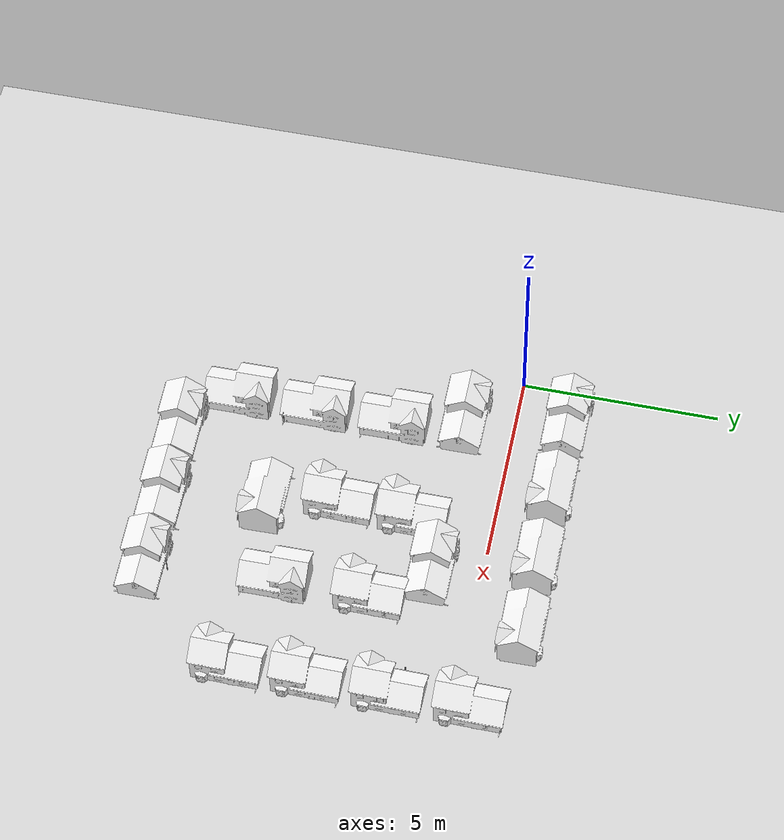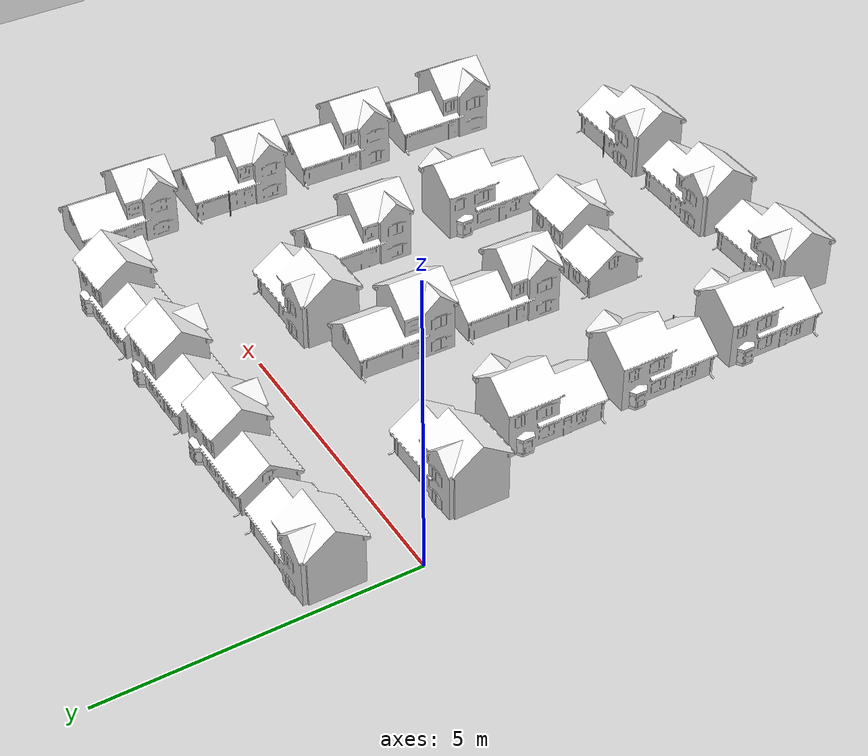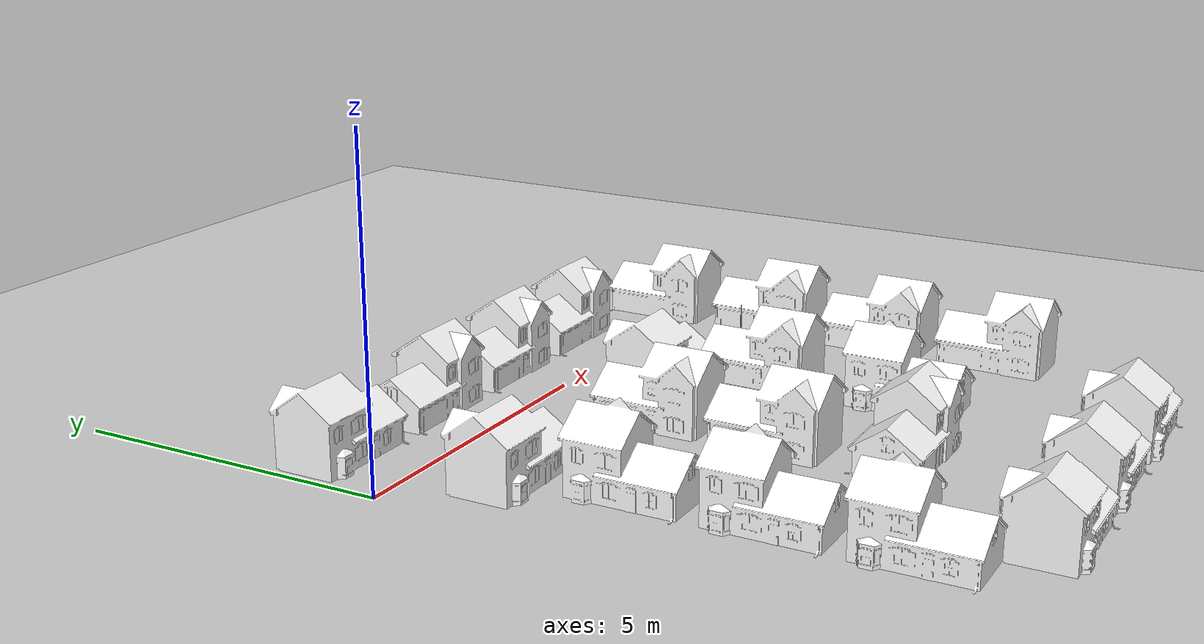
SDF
<sdf version="1.6">
 <world name="default">
  <model name="ground_plane">
   <static>1</static>
   <link name="link">
    <collision name="collision">
     <geometry><plane><normal>0 0 1</normal><size>20 20</size></plane></geometry>
     <surface><friction><ode><mu>100</mu><mu2>50</mu2></ode></friction></surface>
    </collision>
    <visual name="visual">
     <cast_shadows>0</cast_shadows>
     <geometry><plane><normal>0 0 1</normal><size>100 100</size></plane></geometry>
     <material>
      <script><uri>file://media/materials/scripts/gazebo.material</uri><name>Gazebo/Grey</name></script>
     </material>
    </visual>
   </link>
  </model>
  <light name="sun" type="directional">
   <pose>0 0 10 0 -0 0</pose>
   <diffuse>0.8 0.8 0.8 1</diffuse>
   <specular>0.1 0.1 0.1 1</specular>
   <attenuation>
    <range>1000</range>
    <constant>0.9</constant>
    <linear>0.01</linear>
    <quadratic>0.001</quadratic>
   </attenuation>
   <direction>-0.5 0.5 -1</direction>
  </light>
  <gravity>0 0 -9.8</gravity>
  <magnetic_field>6e-06 2.3e-05 -4.2e-05</magnetic_field>
  <atmosphere type="adiabatic"/>
  <physics name="default_physics" default="0" type="ode">
   <max_step_size>0.001</max_step_size>
   <real_time_factor>1</real_time_factor>
   <real_time_update_rate>1000</real_time_update_rate>
  </physics>
  <scene><ambient>0.4 0.4 0.4 1</ambient><background>0.7 0.7 0.7 1</background><shadows>1</shadows></scene>
  <spherical_coordinates>
   <surface_model>EARTH_WGS84</surface_model>
   <latitude_deg>0</latitude_deg>
   <longitude_deg>0</longitude_deg>
   <elevation>0</elevation>
   <heading_deg>0</heading_deg>
  </spherical_coordinates>
  <model name="Ev1">
   <link name="link">
    <inertial>
     <mass>1</mass>
     <inertia><ixx>1</ixx><ixy>0</ixy><ixz>0</ixz><iyy>1</iyy><iyz>0</iyz><izz>1</izz></inertia>
    </inertial>
    <visual name="visual">
     <geometry><mesh><uri>model://house_3/meshes/house_3.dae</uri><scale>0.2 0.2 0.2</scale></mesh></geometry>
     <material>
      <script>
       <uri>model://house_3/materials/scripts</uri>
       <uri>model://house_3/materials/textures</uri>
       <name>House_3/Diffuse</name>
      </script>
      <ambient>1 1 1 1</ambient>
      <diffuse>1 1 1 1</diffuse>
      <specular>0 0 0 1</specular>
      <emissive>0 0 0 1</emissive>
      <shader type="vertex"><normal_map>__default__</normal_map></shader>
     </material>
    </visual>
    <collision name="collision">
     <geometry>
      <mesh><uri>/home/gurbuz/.gazebo/models/house_3/meshes/house_3.dae</uri><scale>0.2 0.2 0.2</scale></mesh>
     </geometry>
     <surface>
      <friction>
       <ode><mu>1</mu><mu2>1</mu2><fdir1>0 0 0</fdir1><slip1>0</slip1><slip2>0</slip2></ode>
       <torsional>
        <coefficient>1</coefficient>
        <patch_radius>0</patch_radius>
        <surface_radius>0</surface_radius>
        <use_patch_radius>1</use_patch_radius>
        <ode><slip>0</slip></ode>
       </torsional>
      </friction>
      <bounce><restitution_coefficient>0</restitution_coefficient><threshold>1e+06</threshold></bounce>
      <contact>
       <collide_without_contact>0</collide_without_contact>
       <collide_without_contact_bitmask>1</collide_without_contact_bitmask>
       <collide_bitmask>1</collide_bitmask>
       <ode>
        <soft_cfm>0</soft_cfm>
        <soft_erp>0.2</soft_erp>
        <kp>1e+13</kp>
        <kd>1</kd>
        <max_vel>0.01</max_vel>
        <min_depth>0</min_depth>
       </ode>
       <bullet>
        <split_impulse>1</split_impulse>
        <split_impulse_penetration_threshold>-0.01</split_impulse_penetration_threshold>
        <soft_cfm>0</soft_cfm>
        <soft_erp>0.2</soft_erp>
        <kp>1e+13</kp>
        <kd>1</kd>
       </bullet>
      </contact>
     </surface>
    </collision>
   </link>
   <static>1</static>
   <pose>1.46194 -1.26813 0 0 -0 0</pose>
  </model>
  <model name="Ev1_clone">
   <link name="link">
    <inertial>
     <mass>1</mass>
     <inertia><ixx>1</ixx><ixy>0</ixy><ixz>0</ixz><iyy>1</iyy><iyz>0</iyz><izz>1</izz></inertia>
    </inertial>
    <visual name="visual">
     <geometry><mesh><uri>model://house_3/meshes/house_3.dae</uri><scale>0.2 0.2 0.2</scale></mesh></geometry>
     <material>
      <script>
       <uri>model://house_3/materials/scripts</uri>
       <uri>model://house_3/materials/textures</uri>
       <name>House_3/Diffuse</name>
      </script>
      <ambient>1 1 1 1</ambient>
      <diffuse>1 1 1 1</diffuse>
      <specular>0 0 0 1</specular>
      <emissive>0 0 0 1</emissive>
      <shader type="vertex"><normal_map>__default__</normal_map></shader>
     </material>
    </visual>
    <collision name="collision">
     <geometry>
      <mesh><uri>/home/gurbuz/.gazebo/models/house_3/meshes/house_3.dae</uri><scale>0.2 0.2 0.2</scale></mesh>
     </geometry>
     <surface>
      <friction>
       <ode><mu>1</mu><mu2>1</mu2><fdir1>0 0 0</fdir1><slip1>0</slip1><slip2>0</slip2></ode>
       <torsional>
        <coefficient>1</coefficient>
        <patch_radius>0</patch_radius>
        <surface_radius>0</surface_radius>
        <use_patch_radius>1</use_patch_radius>
        <ode><slip>0</slip></ode>
       </torsional>
      </friction>
      <bounce><restitution_coefficient>0</restitution_coefficient><threshold>1e+06</threshold></bounce>
      <contact>
       <collide_without_contact>0</collide_without_contact>
       <collide_without_contact_bitmask>1</collide_without_contact_bitmask>
       <collide_bitmask>1</collide_bitmask>
       <ode>
        <soft_cfm>0</soft_cfm>
        <soft_erp>0.2</soft_erp>
        <kp>1e+13</kp>
        <kd>1</kd>
        <max_vel>0.01</max_vel>
        <min_depth>0</min_depth>
       </ode>
       <bullet>
        <split_impulse>1</split_impulse>
        <split_impulse_penetration_threshold>-0.01</split_impulse_penetration_threshold>
        <soft_cfm>0</soft_cfm>
        <soft_erp>0.2</soft_erp>
        <kp>1e+13</kp>
        <kd>1</kd>
       </bullet>
      </contact>
     </surface>
    </collision>
   </link>
   <static>1</static>
   <pose>1.05455 1.27798 0 0 -0 0</pose>
  </model>
  <model name="Ev1_clone_0">
   <link name="link">
    <inertial>
     <mass>1</mass>
     <inertia><ixx>1</ixx><ixy>0</ixy><ixz>0</ixz><iyy>1</iyy><iyz>0</iyz><izz>1</izz></inertia>
    </inertial>
    <visual name="visual">
     <geometry><mesh><uri>model://house_3/meshes/house_3.dae</uri><scale>0.2 0.2 0.2</scale></mesh></geometry>
     <material>
      <script>
       <uri>model://house_3/materials/scripts</uri>
       <uri>model://house_3/materials/textures</uri>
       <name>House_3/Diffuse</name>
      </script>
      <ambient>1 1 1 1</ambient>
      <diffuse>1 1 1 1</diffuse>
      <specular>0 0 0 1</specular>
      <emissive>0 0 0 1</emissive>
      <shader type="vertex"><normal_map>__default__</normal_map></shader>
     </material>
    </visual>
    <collision name="collision">
     <geometry>
      <mesh><uri>/home/gurbuz/.gazebo/models/house_3/meshes/house_3.dae</uri><scale>0.2 0.2 0.2</scale></mesh>
     </geometry>
     <surface>
      <friction>
       <ode><mu>1</mu><mu2>1</mu2><fdir1>0 0 0</fdir1><slip1>0</slip1><slip2>0</slip2></ode>
       <torsional>
        <coefficient>1</coefficient>
        <patch_radius>0</patch_radius>
        <surface_radius>0</surface_radius>
        <use_patch_radius>1</use_patch_radius>
        <ode><slip>0</slip></ode>
       </torsional>
      </friction>
      <bounce><restitution_coefficient>0</restitution_coefficient><threshold>1e+06</threshold></bounce>
      <contact>
       <collide_without_contact>0</collide_without_contact>
       <collide_without_contact_bitmask>1</collide_without_contact_bitmask>
       <collide_bitmask>1</collide_bitmask>
       <ode>
        <soft_cfm>0</soft_cfm>
        <soft_erp>0.2</soft_erp>
        <kp>1e+13</kp>
        <kd>1</kd>
        <max_vel>0.01</max_vel>
        <min_depth>0</min_depth>
       </ode>
       <bullet>
        <split_impulse>1</split_impulse>
        <split_impulse_penetration_threshold>-0.01</split_impulse_penetration_threshold>
        <soft_cfm>0</soft_cfm>
        <soft_erp>0.2</soft_erp>
        <kp>1e+13</kp>
        <kd>1</kd>
       </bullet>
      </contact>
     </surface>
    </collision>
   </link>
   <static>1</static>
   <pose>4.35291 -1.9337 0 0 -0 1.56356</pose>
  </model>
  <model name="Ev1_clone_1">
   <link name="link">
    <inertial>
     <mass>1</mass>
     <inertia><ixx>1</ixx><ixy>0</ixy><ixz>0</ixz><iyy>1</iyy><iyz>0</iyz><izz>1</izz></inertia>
    </inertial>
    <visual name="visual">
     <geometry><mesh><uri>model://house_3/meshes/house_3.dae</uri><scale>0.2 0.2 0.2</scale></mesh></geometry>
     <material>
      <script>
       <uri>model://house_3/materials/scripts</uri>
       <uri>model://house_3/materials/textures</uri>
       <name>House_3/Diffuse</name>
      </script>
      <ambient>1 1 1 1</ambient>
      <diffuse>1 1 1 1</diffuse>
      <specular>0 0 0 1</specular>
      <emissive>0 0 0 1</emissive>
      <shader type="vertex"><normal_map>__default__</normal_map></shader>
     </material>
    </visual>
    <collision name="collision">
     <geometry>
      <mesh><uri>/home/gurbuz/.gazebo/models/house_3/meshes/house_3.dae</uri><scale>0.2 0.2 0.2</scale></mesh>
     </geometry>
     <surface>
      <friction>
       <ode><mu>1</mu><mu2>1</mu2><fdir1>0 0 0</fdir1><slip1>0</slip1><slip2>0</slip2></ode>
       <torsional>
        <coefficient>1</coefficient>
        <patch_radius>0</patch_radius>
        <surface_radius>0</surface_radius>
        <use_patch_radius>1</use_patch_radius>
        <ode><slip>0</slip></ode>
       </torsional>
      </friction>
      <bounce><restitution_coefficient>0</restitution_coefficient><threshold>1e+06</threshold></bounce>
      <contact>
       <collide_without_contact>0</collide_without_contact>
       <collide_without_contact_bitmask>1</collide_without_contact_bitmask>
       <collide_bitmask>1</collide_bitmask>
       <ode>
        <soft_cfm>0</soft_cfm>
        <soft_erp>0.2</soft_erp>
        <kp>1e+13</kp>
        <kd>1</kd>
        <max_vel>0.01</max_vel>
        <min_depth>0</min_depth>
       </ode>
       <bullet>
        <split_impulse>1</split_impulse>
        <split_impulse_penetration_threshold>-0.01</split_impulse_penetration_threshold>
        <soft_cfm>0</soft_cfm>
        <soft_erp>0.2</soft_erp>
        <kp>1e+13</kp>
        <kd>1</kd>
       </bullet>
      </contact>
     </surface>
    </collision>
   </link>
   <static>1</static>
   <pose>5.85723 -1.26247 0 0 -0 0</pose>
  </model>
  <model name="Ev1_clone_clone">
   <link name="link">
    <inertial>
     <mass>1</mass>
     <inertia><ixx>1</ixx><ixy>0</ixy><ixz>0</ixz><iyy>1</iyy><iyz>0</iyz><izz>1</izz></inertia>
    </inertial>
    <visual name="visual">
     <geometry><mesh><uri>model://house_3/meshes/house_3.dae</uri><scale>0.2 0.2 0.2</scale></mesh></geometry>
     <material>
      <script>
       <uri>model://house_3/materials/scripts</uri>
       <uri>model://house_3/materials/textures</uri>
       <name>House_3/Diffuse</name>
      </script>
      <ambient>1 1 1 1</ambient>
      <diffuse>1 1 1 1</diffuse>
      <specular>0 0 0 1</specular>
      <emissive>0 0 0 1</emissive>
      <shader type="vertex"><normal_map>__default__</normal_map></shader>
     </material>
    </visual>
    <collision name="collision">
     <geometry>
      <mesh><uri>/home/gurbuz/.gazebo/models/house_3/meshes/house_3.dae</uri><scale>0.2 0.2 0.2</scale></mesh>
     </geometry>
     <surface>
      <friction>
       <ode><mu>1</mu><mu2>1</mu2><fdir1>0 0 0</fdir1><slip1>0</slip1><slip2>0</slip2></ode>
       <torsional>
        <coefficient>1</coefficient>
        <patch_radius>0</patch_radius>
        <surface_radius>0</surface_radius>
        <use_patch_radius>1</use_patch_radius>
        <ode><slip>0</slip></ode>
       </torsional>
      </friction>
      <bounce><restitution_coefficient>0</restitution_coefficient><threshold>1e+06</threshold></bounce>
      <contact>
       <collide_without_contact>0</collide_without_contact>
       <collide_without_contact_bitmask>1</collide_without_contact_bitmask>
       <collide_bitmask>1</collide_bitmask>
       <ode>
        <soft_cfm>0</soft_cfm>
        <soft_erp>0.2</soft_erp>
        <kp>1e+13</kp>
        <kd>1</kd>
        <max_vel>0.01</max_vel>
        <min_depth>0</min_depth>
       </ode>
       <bullet>
        <split_impulse>1</split_impulse>
        <split_impulse_penetration_threshold>-0.01</split_impulse_penetration_threshold>
        <soft_cfm>0</soft_cfm>
        <soft_erp>0.2</soft_erp>
        <kp>1e+13</kp>
        <kd>1</kd>
       </bullet>
      </contact>
     </surface>
    </collision>
   </link>
   <static>1</static>
   <pose>2.93582 1.26062 0 0 0 -3.13049</pose>
  </model>
  <model name="Ev1_clone_clone_clone">
   <link name="link">
    <inertial>
     <mass>1</mass>
     <inertia><ixx>1</ixx><ixy>0</ixy><ixz>0</ixz><iyy>1</iyy><iyz>0</iyz><izz>1</izz></inertia>
    </inertial>
    <visual name="visual">
     <geometry><mesh><uri>model://house_3/meshes/house_3.dae</uri><scale>0.2 0.2 0.2</scale></mesh></geometry>
     <material>
      <script>
       <uri>model://house_3/materials/scripts</uri>
       <uri>model://house_3/materials/textures</uri>
       <name>House_3/Diffuse</name>
      </script>
      <ambient>1 1 1 1</ambient>
      <diffuse>1 1 1 1</diffuse>
      <specular>0 0 0 1</specular>
      <emissive>0 0 0 1</emissive>
      <shader type="vertex"><normal_map>__default__</normal_map></shader>
     </material>
    </visual>
    <collision name="collision">
     <geometry>
      <mesh><uri>/home/gurbuz/.gazebo/models/house_3/meshes/house_3.dae</uri><scale>0.2 0.2 0.2</scale></mesh>
     </geometry>
     <surface>
      <friction>
       <ode><mu>1</mu><mu2>1</mu2><fdir1>0 0 0</fdir1><slip1>0</slip1><slip2>0</slip2></ode>
       <torsional>
        <coefficient>1</coefficient>
        <patch_radius>0</patch_radius>
        <surface_radius>0</surface_radius>
        <use_patch_radius>1</use_patch_radius>
        <ode><slip>0</slip></ode>
       </torsional>
      </friction>
      <bounce><restitution_coefficient>0</restitution_coefficient><threshold>1e+06</threshold></bounce>
      <contact>
       <collide_without_contact>0</collide_without_contact>
       <collide_without_contact_bitmask>1</collide_without_contact_bitmask>
       <collide_bitmask>1</collide_bitmask>
       <ode>
        <soft_cfm>0</soft_cfm>
        <soft_erp>0.2</soft_erp>
        <kp>1e+13</kp>
        <kd>1</kd>
        <max_vel>0.01</max_vel>
        <min_depth>0</min_depth>
       </ode>
       <bullet>
        <split_impulse>1</split_impulse>
        <split_impulse_penetration_threshold>-0.01</split_impulse_penetration_threshold>
        <soft_cfm>0</soft_cfm>
        <soft_erp>0.2</soft_erp>
        <kp>1e+13</kp>
        <kd>1</kd>
       </bullet>
      </contact>
     </surface>
    </collision>
   </link>
   <static>1</static>
   <pose>4.93586 1.25974 0 0 0 -3.13049</pose>
  </model>
  <model name="Ev1_clone_clone_clone_0">
   <link name="link">
    <inertial>
     <mass>1</mass>
     <inertia><ixx>1</ixx><ixy>0</ixy><ixz>0</ixz><iyy>1</iyy><iyz>0</iyz><izz>1</izz></inertia>
    </inertial>
    <visual name="visual">
     <geometry><mesh><uri>model://house_3/meshes/house_3.dae</uri><scale>0.2 0.2 0.2</scale></mesh></geometry>
     <material>
      <script>
       <uri>model://house_3/materials/scripts</uri>
       <uri>model://house_3/materials/textures</uri>
       <name>House_3/Diffuse</name>
      </script>
      <ambient>1 1 1 1</ambient>
      <diffuse>1 1 1 1</diffuse>
      <specular>0 0 0 1</specular>
      <emissive>0 0 0 1</emissive>
      <shader type="vertex"><normal_map>__default__</normal_map></shader>
     </material>
    </visual>
    <collision name="collision">
     <geometry>
      <mesh><uri>/home/gurbuz/.gazebo/models/house_3/meshes/house_3.dae</uri><scale>0.2 0.2 0.2</scale></mesh>
     </geometry>
     <surface>
      <friction>
       <ode><mu>1</mu><mu2>1</mu2><fdir1>0 0 0</fdir1><slip1>0</slip1><slip2>0</slip2></ode>
       <torsional>
        <coefficient>1</coefficient>
        <patch_radius>0</patch_radius>
        <surface_radius>0</surface_radius>
        <use_patch_radius>1</use_patch_radius>
        <ode><slip>0</slip></ode>
       </torsional>
      </friction>
      <bounce><restitution_coefficient>0</restitution_coefficient><threshold>1e+06</threshold></bounce>
      <contact>
       <collide_without_contact>0</collide_without_contact>
       <collide_without_contact_bitmask>1</collide_without_contact_bitmask>
       <collide_bitmask>1</collide_bitmask>
       <ode>
        <soft_cfm>0</soft_cfm>
        <soft_erp>0.2</soft_erp>
        <kp>1e+13</kp>
        <kd>1</kd>
        <max_vel>0.01</max_vel>
        <min_depth>0</min_depth>
       </ode>
       <bullet>
        <split_impulse>1</split_impulse>
        <split_impulse_penetration_threshold>-0.01</split_impulse_penetration_threshold>
        <soft_cfm>0</soft_cfm>
        <soft_erp>0.2</soft_erp>
        <kp>1e+13</kp>
        <kd>1</kd>
       </bullet>
      </contact>
     </surface>
    </collision>
   </link>
   <static>1</static>
   <pose>6.93264 1.25679 0 0 0 -3.13049</pose>
  </model>
  <model name="Ev1_clone_0_clone">
   <link name="link">
    <inertial>
     <mass>1</mass>
     <inertia><ixx>1</ixx><ixy>0</ixy><ixz>0</ixz><iyy>1</iyy><iyz>0</iyz><izz>1</izz></inertia>
    </inertial>
    <visual name="visual">
     <geometry><mesh><uri>model://house_3/meshes/house_3.dae</uri><scale>0.2 0.2 0.2</scale></mesh></geometry>
     <material>
      <script>
       <uri>model://house_3/materials/scripts</uri>
       <uri>model://house_3/materials/textures</uri>
       <name>House_3/Diffuse</name>
      </script>
      <ambient>1 1 1 1</ambient>
      <diffuse>1 1 1 1</diffuse>
      <specular>0 0 0 1</specular>
      <emissive>0 0 0 1</emissive>
      <shader type="vertex"><normal_map>__default__</normal_map></shader>
     </material>
    </visual>
    <collision name="collision">
     <geometry>
      <mesh><uri>/home/gurbuz/.gazebo/models/house_3/meshes/house_3.dae</uri><scale>0.2 0.2 0.2</scale></mesh>
     </geometry>
     <surface>
      <friction>
       <ode><mu>1</mu><mu2>1</mu2><fdir1>0 0 0</fdir1><slip1>0</slip1><slip2>0</slip2></ode>
       <torsional>
        <coefficient>1</coefficient>
        <patch_radius>0</patch_radius>
        <surface_radius>0</surface_radius>
        <use_patch_radius>1</use_patch_radius>
        <ode><slip>0</slip></ode>
       </torsional>
      </friction>
      <bounce><restitution_coefficient>0</restitution_coefficient><threshold>1e+06</threshold></bounce>
      <contact>
       <collide_without_contact>0</collide_without_contact>
       <collide_without_contact_bitmask>1</collide_without_contact_bitmask>
       <collide_bitmask>1</collide_bitmask>
       <ode>
        <soft_cfm>0</soft_cfm>
        <soft_erp>0.2</soft_erp>
        <kp>1e+13</kp>
        <kd>1</kd>
        <max_vel>0.01</max_vel>
        <min_depth>0</min_depth>
       </ode>
       <bullet>
        <split_impulse>1</split_impulse>
        <split_impulse_penetration_threshold>-0.01</split_impulse_penetration_threshold>
        <soft_cfm>0</soft_cfm>
        <soft_erp>0.2</soft_erp>
        <kp>1e+13</kp>
        <kd>1</kd>
       </bullet>
      </contact>
     </surface>
    </collision>
   </link>
   <static>1</static>
   <pose>9.28561 0.475127 0 0 -0 1.55613</pose>
  </model>
  <model name="Ev1_clone_0_clone_clone">
   <link name="link">
    <inertial>
     <mass>1</mass>
     <inertia><ixx>1</ixx><ixy>0</ixy><ixz>0</ixz><iyy>1</iyy><iyz>0</iyz><izz>1</izz></inertia>
    </inertial>
    <visual name="visual">
     <geometry><mesh><uri>model://house_3/meshes/house_3.dae</uri><scale>0.2 0.2 0.2</scale></mesh></geometry>
     <material>
      <script>
       <uri>model://house_3/materials/scripts</uri>
       <uri>model://house_3/materials/textures</uri>
       <name>House_3/Diffuse</name>
      </script>
      <ambient>1 1 1 1</ambient>
      <diffuse>1 1 1 1</diffuse>
      <specular>0 0 0 1</specular>
      <emissive>0 0 0 1</emissive>
      <shader type="vertex"><normal_map>__default__</normal_map></shader>
     </material>
    </visual>
    <collision name="collision">
     <geometry>
      <mesh><uri>/home/gurbuz/.gazebo/models/house_3/meshes/house_3.dae</uri><scale>0.2 0.2 0.2</scale></mesh>
     </geometry>
     <surface>
      <friction>
       <ode><mu>1</mu><mu2>1</mu2><fdir1>0 0 0</fdir1><slip1>0</slip1><slip2>0</slip2></ode>
       <torsional>
        <coefficient>1</coefficient>
        <patch_radius>0</patch_radius>
        <surface_radius>0</surface_radius>
        <use_patch_radius>1</use_patch_radius>
        <ode><slip>0</slip></ode>
       </torsional>
      </friction>
      <bounce><restitution_coefficient>0</restitution_coefficient><threshold>1e+06</threshold></bounce>
      <contact>
       <collide_without_contact>0</collide_without_contact>
       <collide_without_contact_bitmask>1</collide_without_contact_bitmask>
       <collide_bitmask>1</collide_bitmask>
       <ode>
        <soft_cfm>0</soft_cfm>
        <soft_erp>0.2</soft_erp>
        <kp>1e+13</kp>
        <kd>1</kd>
        <max_vel>0.01</max_vel>
        <min_depth>0</min_depth>
       </ode>
       <bullet>
        <split_impulse>1</split_impulse>
        <split_impulse_penetration_threshold>-0.01</split_impulse_penetration_threshold>
        <soft_cfm>0</soft_cfm>
        <soft_erp>0.2</soft_erp>
        <kp>1e+13</kp>
        <kd>1</kd>
       </bullet>
      </contact>
     </surface>
    </collision>
   </link>
   <static>1</static>
   <pose>9.2867 -1.54827 0 0 -0 1.55613</pose>
  </model>
  <model name="Ev1_clone_0_clone_clone_0">
   <link name="link">
    <inertial>
     <mass>1</mass>
     <inertia><ixx>1</ixx><ixy>0</ixy><ixz>0</ixz><iyy>1</iyy><iyz>0</iyz><izz>1</izz></inertia>
    </inertial>
    <visual name="visual">
     <geometry><mesh><uri>model://house_3/meshes/house_3.dae</uri><scale>0.2 0.2 0.2</scale></mesh></geometry>
     <material>
      <script>
       <uri>model://house_3/materials/scripts</uri>
       <uri>model://house_3/materials/textures</uri>
       <name>House_3/Diffuse</name>
      </script>
      <ambient>1 1 1 1</ambient>
      <diffuse>1 1 1 1</diffuse>
      <specular>0 0 0 1</specular>
      <emissive>0 0 0 1</emissive>
      <shader type="vertex"><normal_map>__default__</normal_map></shader>
     </material>
    </visual>
    <collision name="collision">
     <geometry>
      <mesh><uri>/home/gurbuz/.gazebo/models/house_3/meshes/house_3.dae</uri><scale>0.2 0.2 0.2</scale></mesh>
     </geometry>
     <surface>
      <friction>
       <ode><mu>1</mu><mu2>1</mu2><fdir1>0 0 0</fdir1><slip1>0</slip1><slip2>0</slip2></ode>
       <torsional>
        <coefficient>1</coefficient>
        <patch_radius>0</patch_radius>
        <surface_radius>0</surface_radius>
        <use_patch_radius>1</use_patch_radius>
        <ode><slip>0</slip></ode>
       </torsional>
      </friction>
      <bounce><restitution_coefficient>0</restitution_coefficient><threshold>1e+06</threshold></bounce>
      <contact>
       <collide_without_contact>0</collide_without_contact>
       <collide_without_contact_bitmask>1</collide_without_contact_bitmask>
       <collide_bitmask>1</collide_bitmask>
       <ode>
        <soft_cfm>0</soft_cfm>
        <soft_erp>0.2</soft_erp>
        <kp>1e+13</kp>
        <kd>1</kd>
        <max_vel>0.01</max_vel>
        <min_depth>0</min_depth>
       </ode>
       <bullet>
        <split_impulse>1</split_impulse>
        <split_impulse_penetration_threshold>-0.01</split_impulse_penetration_threshold>
        <soft_cfm>0</soft_cfm>
        <soft_erp>0.2</soft_erp>
        <kp>1e+13</kp>
        <kd>1</kd>
       </bullet>
      </contact>
     </surface>
    </collision>
   </link>
   <static>1</static>
   <pose>6.75968 -2.54011 0 0 -0 1.55613</pose>
  </model>
  <model name="Ev1_clone_0_clone_clone_0_clone">
   <link name="link">
    <inertial>
     <mass>1</mass>
     <inertia><ixx>1</ixx><ixy>0</ixy><ixz>0</ixz><iyy>1</iyy><iyz>0</iyz><izz>1</izz></inertia>
    </inertial>
    <visual name="visual">
     <geometry><mesh><uri>model://house_3/meshes/house_3.dae</uri><scale>0.2 0.2 0.2</scale></mesh></geometry>
     <material>
      <script>
       <uri>model://house_3/materials/scripts</uri>
       <uri>model://house_3/materials/textures</uri>
       <name>House_3/Diffuse</name>
      </script>
      <ambient>1 1 1 1</ambient>
      <diffuse>1 1 1 1</diffuse>
      <specular>0 0 0 1</specular>
      <emissive>0 0 0 1</emissive>
      <shader type="vertex"><normal_map>__default__</normal_map></shader>
     </material>
    </visual>
    <collision name="collision">
     <geometry>
      <mesh><uri>/home/gurbuz/.gazebo/models/house_3/meshes/house_3.dae</uri><scale>0.2 0.2 0.2</scale></mesh>
     </geometry>
     <surface>
      <friction>
       <ode><mu>1</mu><mu2>1</mu2><fdir1>0 0 0</fdir1><slip1>0</slip1><slip2>0</slip2></ode>
       <torsional>
        <coefficient>1</coefficient>
        <patch_radius>0</patch_radius>
        <surface_radius>0</surface_radius>
        <use_patch_radius>1</use_patch_radius>
        <ode><slip>0</slip></ode>
       </torsional>
      </friction>
      <bounce><restitution_coefficient>0</restitution_coefficient><threshold>1e+06</threshold></bounce>
      <contact>
       <collide_without_contact>0</collide_without_contact>
       <collide_without_contact_bitmask>1</collide_without_contact_bitmask>
       <collide_bitmask>1</collide_bitmask>
       <ode>
        <soft_cfm>0</soft_cfm>
        <soft_erp>0.2</soft_erp>
        <kp>1e+13</kp>
        <kd>1</kd>
        <max_vel>0.01</max_vel>
        <min_depth>0</min_depth>
       </ode>
       <bullet>
        <split_impulse>1</split_impulse>
        <split_impulse_penetration_threshold>-0.01</split_impulse_penetration_threshold>
        <soft_cfm>0</soft_cfm>
        <soft_erp>0.2</soft_erp>
        <kp>1e+13</kp>
        <kd>1</kd>
       </bullet>
      </contact>
     </surface>
    </collision>
   </link>
   <static>1</static>
   <pose>6.74391 -5.0643 0 0 0 -1.56767</pose>
  </model>
  <model name="Ev1_clone_0_clone_0">
   <link name="link">
    <inertial>
     <mass>1</mass>
     <inertia><ixx>1</ixx><ixy>0</ixy><ixz>0</ixz><iyy>1</iyy><iyz>0</iyz><izz>1</izz></inertia>
    </inertial>
    <visual name="visual">
     <geometry><mesh><uri>model://house_3/meshes/house_3.dae</uri><scale>0.2 0.2 0.2</scale></mesh></geometry>
     <material>
      <script>
       <uri>model://house_3/materials/scripts</uri>
       <uri>model://house_3/materials/textures</uri>
       <name>House_3/Diffuse</name>
      </script>
      <ambient>1 1 1 1</ambient>
      <diffuse>1 1 1 1</diffuse>
      <specular>0 0 0 1</specular>
      <emissive>0 0 0 1</emissive>
      <shader type="vertex"><normal_map>__default__</normal_map></shader>
     </material>
    </visual>
    <collision name="collision">
     <geometry>
      <mesh><uri>/home/gurbuz/.gazebo/models/house_3/meshes/house_3.dae</uri><scale>0.2 0.2 0.2</scale></mesh>
     </geometry>
     <surface>
      <friction>
       <ode><mu>1</mu><mu2>1</mu2><fdir1>0 0 0</fdir1><slip1>0</slip1><slip2>0</slip2></ode>
       <torsional>
        <coefficient>1</coefficient>
        <patch_radius>0</patch_radius>
        <surface_radius>0</surface_radius>
        <use_patch_radius>1</use_patch_radius>
        <ode><slip>0</slip></ode>
       </torsional>
      </friction>
      <bounce><restitution_coefficient>0</restitution_coefficient><threshold>1e+06</threshold></bounce>
      <contact>
       <collide_without_contact>0</collide_without_contact>
       <collide_without_contact_bitmask>1</collide_without_contact_bitmask>
       <collide_bitmask>1</collide_bitmask>
       <ode>
        <soft_cfm>0</soft_cfm>
        <soft_erp>0.2</soft_erp>
        <kp>1e+13</kp>
        <kd>1</kd>
        <max_vel>0.01</max_vel>
        <min_depth>0</min_depth>
       </ode>
       <bullet>
        <split_impulse>1</split_impulse>
        <split_impulse_penetration_threshold>-0.01</split_impulse_penetration_threshold>
        <soft_cfm>0</soft_cfm>
        <soft_erp>0.2</soft_erp>
        <kp>1e+13</kp>
        <kd>1</kd>
       </bullet>
      </contact>
     </surface>
    </collision>
   </link>
   <static>1</static>
   <pose>4.29526 -3.82004 0 0 -0 1.55613</pose>
  </model>
  <model name="Ev1_clone_clone_clone_1">
   <link name="link">
    <inertial>
     <mass>1</mass>
     <inertia><ixx>1</ixx><ixy>0</ixy><ixz>0</ixz><iyy>1</iyy><iyz>0</iyz><izz>1</izz></inertia>
    </inertial>
    <visual name="visual">
     <geometry><mesh><uri>model://house_3/meshes/house_3.dae</uri><scale>0.2 0.2 0.2</scale></mesh></geometry>
     <material>
      <script>
       <uri>model://house_3/materials/scripts</uri>
       <uri>model://house_3/materials/textures</uri>
       <name>House_3/Diffuse</name>
      </script>
      <ambient>1 1 1 1</ambient>
      <diffuse>1 1 1 1</diffuse>
      <specular>0 0 0 1</specular>
      <emissive>0 0 0 1</emissive>
      <shader type="vertex"><normal_map>__default__</normal_map></shader>
     </material>
    </visual>
    <collision name="collision">
     <geometry>
      <mesh><uri>/home/gurbuz/.gazebo/models/house_3/meshes/house_3.dae</uri><scale>0.2 0.2 0.2</scale></mesh>
     </geometry>
     <surface>
      <friction>
       <ode><mu>1</mu><mu2>1</mu2><fdir1>0 0 0</fdir1><slip1>0</slip1><slip2>0</slip2></ode>
       <torsional>
        <coefficient>1</coefficient>
        <patch_radius>0</patch_radius>
        <surface_radius>0</surface_radius>
        <use_patch_radius>1</use_patch_radius>
        <ode><slip>0</slip></ode>
       </torsional>
      </friction>
      <bounce><restitution_coefficient>0</restitution_coefficient><threshold>1e+06</threshold></bounce>
      <contact>
       <collide_without_contact>0</collide_without_contact>
       <collide_without_contact_bitmask>1</collide_without_contact_bitmask>
       <collide_bitmask>1</collide_bitmask>
       <ode>
        <soft_cfm>0</soft_cfm>
        <soft_erp>0.2</soft_erp>
        <kp>1e+13</kp>
        <kd>1</kd>
        <max_vel>0.01</max_vel>
        <min_depth>0</min_depth>
       </ode>
       <bullet>
        <split_impulse>1</split_impulse>
        <split_impulse_penetration_threshold>-0.01</split_impulse_penetration_threshold>
        <soft_cfm>0</soft_cfm>
        <soft_erp>0.2</soft_erp>
        <kp>1e+13</kp>
        <kd>1</kd>
       </bullet>
      </contact>
     </surface>
    </collision>
   </link>
   <static>1</static>
   <pose>4.55651 -5.72523 0 0 0 -3.13049</pose>
  </model>
  <model name="Ev1_clone_0_clone_clone_0_clone_clone">
   <link name="link">
    <inertial>
     <mass>1</mass>
     <inertia><ixx>1</ixx><ixy>0</ixy><ixz>0</ixz><iyy>1</iyy><iyz>0</iyz><izz>1</izz></inertia>
    </inertial>
    <visual name="visual">
     <geometry><mesh><uri>model://house_3/meshes/house_3.dae</uri><scale>0.2 0.2 0.2</scale></mesh></geometry>
     <material>
      <script>
       <uri>model://house_3/materials/scripts</uri>
       <uri>model://house_3/materials/textures</uri>
       <name>House_3/Diffuse</name>
      </script>
      <ambient>1 1 1 1</ambient>
      <diffuse>1 1 1 1</diffuse>
      <specular>0 0 0 1</specular>
      <emissive>0 0 0 1</emissive>
      <shader type="vertex"><normal_map>__default__</normal_map></shader>
     </material>
    </visual>
    <collision name="collision">
     <geometry>
      <mesh><uri>/home/gurbuz/.gazebo/models/house_3/meshes/house_3.dae</uri><scale>0.2 0.2 0.2</scale></mesh>
     </geometry>
     <surface>
      <friction>
       <ode><mu>1</mu><mu2>1</mu2><fdir1>0 0 0</fdir1><slip1>0</slip1><slip2>0</slip2></ode>
       <torsional>
        <coefficient>1</coefficient>
        <patch_radius>0</patch_radius>
        <surface_radius>0</surface_radius>
        <use_patch_radius>1</use_patch_radius>
        <ode><slip>0</slip></ode>
       </torsional>
      </friction>
      <bounce><restitution_coefficient>0</restitution_coefficient><threshold>1e+06</threshold></bounce>
      <contact>
       <collide_without_contact>0</collide_without_contact>
       <collide_without_contact_bitmask>1</collide_without_contact_bitmask>
       <collide_bitmask>1</collide_bitmask>
       <ode>
        <soft_cfm>0</soft_cfm>
        <soft_erp>0.2</soft_erp>
        <kp>1e+13</kp>
        <kd>1</kd>
        <max_vel>0.01</max_vel>
        <min_depth>0</min_depth>
       </ode>
       <bullet>
        <split_impulse>1</split_impulse>
        <split_impulse_penetration_threshold>-0.01</split_impulse_penetration_threshold>
        <soft_cfm>0</soft_cfm>
        <soft_erp>0.2</soft_erp>
        <kp>1e+13</kp>
        <kd>1</kd>
       </bullet>
      </contact>
     </surface>
    </collision>
   </link>
   <static>1</static>
   <pose>1.73307 -3.06616 0 0 0 -1.56767</pose>
  </model>
  <model name="Ev1_clone_0_clone_clone_0_clone_clone_0">
   <link name="link">
    <inertial>
     <mass>1</mass>
     <inertia><ixx>1</ixx><ixy>0</ixy><ixz>0</ixz><iyy>1</iyy><iyz>0</iyz><izz>1</izz></inertia>
    </inertial>
    <visual name="visual">
     <geometry><mesh><uri>model://house_3/meshes/house_3.dae</uri><scale>0.2 0.2 0.2</scale></mesh></geometry>
     <material>
      <script>
       <uri>model://house_3/materials/scripts</uri>
       <uri>model://house_3/materials/textures</uri>
       <name>House_3/Diffuse</name>
      </script>
      <ambient>1 1 1 1</ambient>
      <diffuse>1 1 1 1</diffuse>
      <specular>0 0 0 1</specular>
      <emissive>0 0 0 1</emissive>
      <shader type="vertex"><normal_map>__default__</normal_map></shader>
     </material>
    </visual>
    <collision name="collision">
     <geometry>
      <mesh><uri>/home/gurbuz/.gazebo/models/house_3/meshes/house_3.dae</uri><scale>0.2 0.2 0.2</scale></mesh>
     </geometry>
     <surface>
      <friction>
       <ode><mu>1</mu><mu2>1</mu2><fdir1>0 0 0</fdir1><slip1>0</slip1><slip2>0</slip2></ode>
       <torsional>
        <coefficient>1</coefficient>
        <patch_radius>0</patch_radius>
        <surface_radius>0</surface_radius>
        <use_patch_radius>1</use_patch_radius>
        <ode><slip>0</slip></ode>
       </torsional>
      </friction>
      <bounce><restitution_coefficient>0</restitution_coefficient><threshold>1e+06</threshold></bounce>
      <contact>
       <collide_without_contact>0</collide_without_contact>
       <collide_without_contact_bitmask>1</collide_without_contact_bitmask>
       <collide_bitmask>1</collide_bitmask>
       <ode>
        <soft_cfm>0</soft_cfm>
        <soft_erp>0.2</soft_erp>
        <kp>1e+13</kp>
        <kd>1</kd>
        <max_vel>0.01</max_vel>
        <min_depth>0</min_depth>
       </ode>
       <bullet>
        <split_impulse>1</split_impulse>
        <split_impulse_penetration_threshold>-0.01</split_impulse_penetration_threshold>
        <soft_cfm>0</soft_cfm>
        <soft_erp>0.2</soft_erp>
        <kp>1e+13</kp>
        <kd>1</kd>
       </bullet>
      </contact>
     </surface>
    </collision>
   </link>
   <static>1</static>
   <pose>1.74159 -5.0706 0 0 0 -1.56767</pose>
  </model>
  <model name="Ev1_clone_0_clone_clone_0_clone_clone_1">
   <link name="link">
    <inertial>
     <mass>1</mass>
     <inertia><ixx>1</ixx><ixy>0</ixy><ixz>0</ixz><iyy>1</iyy><iyz>0</iyz><izz>1</izz></inertia>
    </inertial>
    <visual name="visual">
     <geometry><mesh><uri>model://house_3/meshes/house_3.dae</uri><scale>0.2 0.2 0.2</scale></mesh></geometry>
     <material>
      <script>
       <uri>model://house_3/materials/scripts</uri>
       <uri>model://house_3/materials/textures</uri>
       <name>House_3/Diffuse</name>
      </script>
      <ambient>1 1 1 1</ambient>
      <diffuse>1 1 1 1</diffuse>
      <specular>0 0 0 1</specular>
      <emissive>0 0 0 1</emissive>
      <shader type="vertex"><normal_map>__default__</normal_map></shader>
     </material>
    </visual>
    <collision name="collision">
     <geometry>
      <mesh><uri>/home/gurbuz/.gazebo/models/house_3/meshes/house_3.dae</uri><scale>0.2 0.2 0.2</scale></mesh>
     </geometry>
     <surface>
      <friction>
       <ode><mu>1</mu><mu2>1</mu2><fdir1>0 0 0</fdir1><slip1>0</slip1><slip2>0</slip2></ode>
       <torsional>
        <coefficient>1</coefficient>
        <patch_radius>0</patch_radius>
        <surface_radius>0</surface_radius>
        <use_patch_radius>1</use_patch_radius>
        <ode><slip>0</slip></ode>
       </torsional>
      </friction>
      <bounce><restitution_coefficient>0</restitution_coefficient><threshold>1e+06</threshold></bounce>
      <contact>
       <collide_without_contact>0</collide_without_contact>
       <collide_without_contact_bitmask>1</collide_without_contact_bitmask>
       <collide_bitmask>1</collide_bitmask>
       <ode>
        <soft_cfm>0</soft_cfm>
        <soft_erp>0.2</soft_erp>
        <kp>1e+13</kp>
        <kd>1</kd>
        <max_vel>0.01</max_vel>
        <min_depth>0</min_depth>
       </ode>
       <bullet>
        <split_impulse>1</split_impulse>
        <split_impulse_penetration_threshold>-0.01</split_impulse_penetration_threshold>
        <soft_cfm>0</soft_cfm>
        <soft_erp>0.2</soft_erp>
        <kp>1e+13</kp>
        <kd>1</kd>
       </bullet>
      </contact>
     </surface>
    </collision>
   </link>
   <static>1</static>
   <pose>1.73842 -7.06973 0 0 0 -1.56767</pose>
  </model>
  <model name="Ev1_clone_1_clone">
   <link name="link">
    <inertial>
     <mass>1</mass>
     <inertia><ixx>1</ixx><ixy>0</ixy><ixz>0</ixz><iyy>1</iyy><iyz>0</iyz><izz>1</izz></inertia>
    </inertial>
    <visual name="visual">
     <geometry><mesh><uri>model://house_3/meshes/house_3.dae</uri><scale>0.2 0.2 0.2</scale></mesh></geometry>
     <material>
      <script>
       <uri>model://house_3/materials/scripts</uri>
       <uri>model://house_3/materials/textures</uri>
       <name>House_3/Diffuse</name>
      </script>
      <ambient>1 1 1 1</ambient>
      <diffuse>1 1 1 1</diffuse>
      <specular>0 0 0 1</specular>
      <emissive>0 0 0 1</emissive>
      <shader type="vertex"><normal_map>__default__</normal_map></shader>
     </material>
    </visual>
    <collision name="collision">
     <geometry>
      <mesh><uri>/home/gurbuz/.gazebo/models/house_3/meshes/house_3.dae</uri><scale>0.2 0.2 0.2</scale></mesh>
     </geometry>
     <surface>
      <friction>
       <ode><mu>1</mu><mu2>1</mu2><fdir1>0 0 0</fdir1><slip1>0</slip1><slip2>0</slip2></ode>
       <torsional>
        <coefficient>1</coefficient>
        <patch_radius>0</patch_radius>
        <surface_radius>0</surface_radius>
        <use_patch_radius>1</use_patch_radius>
        <ode><slip>0</slip></ode>
       </torsional>
      </friction>
      <bounce><restitution_coefficient>0</restitution_coefficient><threshold>1e+06</threshold></bounce>
      <contact>
       <collide_without_contact>0</collide_without_contact>
       <collide_without_contact_bitmask>1</collide_without_contact_bitmask>
       <collide_bitmask>1</collide_bitmask>
       <ode>
        <soft_cfm>0</soft_cfm>
        <soft_erp>0.2</soft_erp>
        <kp>1e+13</kp>
        <kd>1</kd>
        <max_vel>0.01</max_vel>
        <min_depth>0</min_depth>
       </ode>
       <bullet>
        <split_impulse>1</split_impulse>
        <split_impulse_penetration_threshold>-0.01</split_impulse_penetration_threshold>
        <soft_cfm>0</soft_cfm>
        <soft_erp>0.2</soft_erp>
        <kp>1e+13</kp>
        <kd>1</kd>
       </bullet>
      </contact>
     </surface>
    </collision>
   </link>
   <static>1</static>
   <pose>3.06075 -8.2986 0 0 -0 0</pose>
  </model>
  <model name="Ev1_clone_1_clone_0">
   <link name="link">
    <inertial>
     <mass>1</mass>
     <inertia><ixx>1</ixx><ixy>0</ixy><ixz>0</ixz><iyy>1</iyy><iyz>0</iyz><izz>1</izz></inertia>
    </inertial>
    <visual name="visual">
     <geometry><mesh><uri>model://house_3/meshes/house_3.dae</uri><scale>0.2 0.2 0.2</scale></mesh></geometry>
     <material>
      <script>
       <uri>model://house_3/materials/scripts</uri>
       <uri>model://house_3/materials/textures</uri>
       <name>House_3/Diffuse</name>
      </script>
      <ambient>1 1 1 1</ambient>
      <diffuse>1 1 1 1</diffuse>
      <specular>0 0 0 1</specular>
      <emissive>0 0 0 1</emissive>
      <shader type="vertex"><normal_map>__default__</normal_map></shader>
     </material>
    </visual>
    <collision name="collision">
     <geometry>
      <mesh><uri>/home/gurbuz/.gazebo/models/house_3/meshes/house_3.dae</uri><scale>0.2 0.2 0.2</scale></mesh>
     </geometry>
     <surface>
      <friction>
       <ode><mu>1</mu><mu2>1</mu2><fdir1>0 0 0</fdir1><slip1>0</slip1><slip2>0</slip2></ode>
       <torsional>
        <coefficient>1</coefficient>
        <patch_radius>0</patch_radius>
        <surface_radius>0</surface_radius>
        <use_patch_radius>1</use_patch_radius>
        <ode><slip>0</slip></ode>
       </torsional>
      </friction>
      <bounce><restitution_coefficient>0</restitution_coefficient><threshold>1e+06</threshold></bounce>
      <contact>
       <collide_without_contact>0</collide_without_contact>
       <collide_without_contact_bitmask>1</collide_without_contact_bitmask>
       <collide_bitmask>1</collide_bitmask>
       <ode>
        <soft_cfm>0</soft_cfm>
        <soft_erp>0.2</soft_erp>
        <kp>1e+13</kp>
        <kd>1</kd>
        <max_vel>0.01</max_vel>
        <min_depth>0</min_depth>
       </ode>
       <bullet>
        <split_impulse>1</split_impulse>
        <split_impulse_penetration_threshold>-0.01</split_impulse_penetration_threshold>
        <soft_cfm>0</soft_cfm>
        <soft_erp>0.2</soft_erp>
        <kp>1e+13</kp>
        <kd>1</kd>
       </bullet>
      </contact>
     </surface>
    </collision>
   </link>
   <static>1</static>
   <pose>5.06956 -8.26492 0 0 -0 0</pose>
  </model>
  <model name="Ev1_clone_1_clone_1">
   <link name="link">
    <inertial>
     <mass>1</mass>
     <inertia><ixx>1</ixx><ixy>0</ixy><ixz>0</ixz><iyy>1</iyy><iyz>0</iyz><izz>1</izz></inertia>
    </inertial>
    <visual name="visual">
     <geometry><mesh><uri>model://house_3/meshes/house_3.dae</uri><scale>0.2 0.2 0.2</scale></mesh></geometry>
     <material>
      <script>
       <uri>model://house_3/materials/scripts</uri>
       <uri>model://house_3/materials/textures</uri>
       <name>House_3/Diffuse</name>
      </script>
      <ambient>1 1 1 1</ambient>
      <diffuse>1 1 1 1</diffuse>
      <specular>0 0 0 1</specular>
      <emissive>0 0 0 1</emissive>
      <shader type="vertex"><normal_map>__default__</normal_map></shader>
     </material>
    </visual>
    <collision name="collision">
     <geometry>
      <mesh><uri>/home/gurbuz/.gazebo/models/house_3/meshes/house_3.dae</uri><scale>0.2 0.2 0.2</scale></mesh>
     </geometry>
     <surface>
      <friction>
       <ode><mu>1</mu><mu2>1</mu2><fdir1>0 0 0</fdir1><slip1>0</slip1><slip2>0</slip2></ode>
       <torsional>
        <coefficient>1</coefficient>
        <patch_radius>0</patch_radius>
        <surface_radius>0</surface_radius>
        <use_patch_radius>1</use_patch_radius>
        <ode><slip>0</slip></ode>
       </torsional>
      </friction>
      <bounce><restitution_coefficient>0</restitution_coefficient><threshold>1e+06</threshold></bounce>
      <contact>
       <collide_without_contact>0</collide_without_contact>
       <collide_without_contact_bitmask>1</collide_without_contact_bitmask>
       <collide_bitmask>1</collide_bitmask>
       <ode>
        <soft_cfm>0</soft_cfm>
        <soft_erp>0.2</soft_erp>
        <kp>1e+13</kp>
        <kd>1</kd>
        <max_vel>0.01</max_vel>
        <min_depth>0</min_depth>
       </ode>
       <bullet>
        <split_impulse>1</split_impulse>
        <split_impulse_penetration_threshold>-0.01</split_impulse_penetration_threshold>
        <soft_cfm>0</soft_cfm>
        <soft_erp>0.2</soft_erp>
        <kp>1e+13</kp>
        <kd>1</kd>
       </bullet>
      </contact>
     </surface>
    </collision>
   </link>
   <static>1</static>
   <pose>7.06664 -8.2744 0 0 -0 0</pose>
  </model>
  <model name="Ev1_clone_0_clone_clone_clone">
   <link name="link">
    <inertial>
     <mass>1</mass>
     <inertia><ixx>1</ixx><ixy>0</ixy><ixz>0</ixz><iyy>1</iyy><iyz>0</iyz><izz>1</izz></inertia>
    </inertial>
    <visual name="visual">
     <geometry><mesh><uri>model://house_3/meshes/house_3.dae</uri><scale>0.2 0.2 0.2</scale></mesh></geometry>
     <material>
      <script>
       <uri>model://house_3/materials/scripts</uri>
       <uri>model://house_3/materials/textures</uri>
       <name>House_3/Diffuse</name>
      </script>
      <ambient>1 1 1 1</ambient>
      <diffuse>1 1 1 1</diffuse>
      <specular>0 0 0 1</specular>
      <emissive>0 0 0 1</emissive>
      <shader type="vertex"><normal_map>__default__</normal_map></shader>
     </material>
    </visual>
    <collision name="collision">
     <geometry>
      <mesh><uri>/home/gurbuz/.gazebo/models/house_3/meshes/house_3.dae</uri><scale>0.2 0.2 0.2</scale></mesh>
     </geometry>
     <surface>
      <friction>
       <ode><mu>1</mu><mu2>1</mu2><fdir1>0 0 0</fdir1><slip1>0</slip1><slip2>0</slip2></ode>
       <torsional>
        <coefficient>1</coefficient>
        <patch_radius>0</patch_radius>
        <surface_radius>0</surface_radius>
        <use_patch_radius>1</use_patch_radius>
        <ode><slip>0</slip></ode>
       </torsional>
      </friction>
      <bounce><restitution_coefficient>0</restitution_coefficient><threshold>1e+06</threshold></bounce>
      <contact>
       <collide_without_contact>0</collide_without_contact>
       <collide_without_contact_bitmask>1</collide_without_contact_bitmask>
       <collide_bitmask>1</collide_bitmask>
       <ode>
        <soft_cfm>0</soft_cfm>
        <soft_erp>0.2</soft_erp>
        <kp>1e+13</kp>
        <kd>1</kd>
        <max_vel>0.01</max_vel>
        <min_depth>0</min_depth>
       </ode>
       <bullet>
        <split_impulse>1</split_impulse>
        <split_impulse_penetration_threshold>-0.01</split_impulse_penetration_threshold>
        <soft_cfm>0</soft_cfm>
        <soft_erp>0.2</soft_erp>
        <kp>1e+13</kp>
        <kd>1</kd>
       </bullet>
      </contact>
     </surface>
    </collision>
   </link>
   <static>1</static>
   <pose>9.27389 -3.55043 0 0 -0 1.55613</pose>
  </model>
  <model name="Ev1_clone_0_clone_clone_clone_0">
   <link name="link">
    <inertial>
     <mass>1</mass>
     <inertia><ixx>1</ixx><ixy>0</ixy><ixz>0</ixz><iyy>1</iyy><iyz>0</iyz><izz>1</izz></inertia>
    </inertial>
    <visual name="visual">
     <geometry><mesh><uri>model://house_3/meshes/house_3.dae</uri><scale>0.2 0.2 0.2</scale></mesh></geometry>
     <material>
      <script>
       <uri>model://house_3/materials/scripts</uri>
       <uri>model://house_3/materials/textures</uri>
       <name>House_3/Diffuse</name>
      </script>
      <ambient>1 1 1 1</ambient>
      <diffuse>1 1 1 1</diffuse>
      <specular>0 0 0 1</specular>
      <emissive>0 0 0 1</emissive>
      <shader type="vertex"><normal_map>__default__</normal_map></shader>
     </material>
    </visual>
    <collision name="collision">
     <geometry>
      <mesh><uri>/home/gurbuz/.gazebo/models/house_3/meshes/house_3.dae</uri><scale>0.2 0.2 0.2</scale></mesh>
     </geometry>
     <surface>
      <friction>
       <ode><mu>1</mu><mu2>1</mu2><fdir1>0 0 0</fdir1><slip1>0</slip1><slip2>0</slip2></ode>
       <torsional>
        <coefficient>1</coefficient>
        <patch_radius>0</patch_radius>
        <surface_radius>0</surface_radius>
        <use_patch_radius>1</use_patch_radius>
        <ode><slip>0</slip></ode>
       </torsional>
      </friction>
      <bounce><restitution_coefficient>0</restitution_coefficient><threshold>1e+06</threshold></bounce>
      <contact>
       <collide_without_contact>0</collide_without_contact>
       <collide_without_contact_bitmask>1</collide_without_contact_bitmask>
       <collide_bitmask>1</collide_bitmask>
       <ode>
        <soft_cfm>0</soft_cfm>
        <soft_erp>0.2</soft_erp>
        <kp>1e+13</kp>
        <kd>1</kd>
        <max_vel>0.01</max_vel>
        <min_depth>0</min_depth>
       </ode>
       <bullet>
        <split_impulse>1</split_impulse>
        <split_impulse_penetration_threshold>-0.01</split_impulse_penetration_threshold>
        <soft_cfm>0</soft_cfm>
        <soft_erp>0.2</soft_erp>
        <kp>1e+13</kp>
        <kd>1</kd>
       </bullet>
      </contact>
     </surface>
    </collision>
   </link>
   <static>1</static>
   <pose>9.27696 -5.54216 0 0 -0 1.55613</pose>
  </model>
  <model name="StopSign_0_clone_0">
   <model name="pole">
    <link name="link_5">
     <inertial>
      <mass>1</mass>
      <inertia><ixx>1</ixx><ixy>0</ixy><ixz>0</ixz><iyy>1</iyy><iyz>0</iyz><izz>1</izz></inertia>
     </inertial>
     <visual name="visual">
      <geometry><cylinder><radius>0.01</radius><length>1</length></cylinder></geometry>
      <material>
       <lighting>1</lighting>
       <script><uri>file://media/materials/scripts/gazebo.material</uri><name>Gazebo/Grey</name></script>
       <ambient>0.3 0.3 0.3 1</ambient>
       <diffuse>0.7 0.7 0.7 1</diffuse>
       <specular>0.01 0.01 0.01 1</specular>
       <emissive>0 0 0 1</emissive>
       <shader type="vertex"><normal_map>__default__</normal_map></shader>
      </material>
     </visual>
     <collision name="collision">
      <geometry><cylinder><radius>0.5</radius><length>1</length></cylinder></geometry>
      <surface>
       <friction>
        <ode><mu>1</mu><mu2>1</mu2><fdir1>0 0 0</fdir1><slip1>0</slip1><slip2>0</slip2></ode>
        <torsional>
         <coefficient>1</coefficient>
         <patch_radius>0</patch_radius>
         <surface_radius>0</surface_radius>
         <use_patch_radius>1</use_patch_radius>
         <ode><slip>0</slip></ode>
        </torsional>
       </friction>
       <bounce><restitution_coefficient>0</restitution_coefficient><threshold>1e+06</threshold></bounce>
       <contact>
        <collide_without_contact>0</collide_without_contact>
        <collide_without_contact_bitmask>1</collide_without_contact_bitmask>
        <collide_bitmask>1</collide_bitmask>
        <ode>
         <soft_cfm>0</soft_cfm>
         <soft_erp>0.2</soft_erp>
         <kp>1e+13</kp>
         <kd>1</kd>
         <max_vel>0.01</max_vel>
         <min_depth>0</min_depth>
        </ode>
        <bullet>
         <split_impulse>1</split_impulse>
         <split_impulse_penetration_threshold>-0.01</split_impulse_penetration_threshold>
         <soft_cfm>0</soft_cfm>
         <soft_erp>0.2</soft_erp>
         <kp>1e+13</kp>
         <kd>1</kd>
        </bullet>
       </contact>
      </surface>
     </collision>
    </link>
    <static>1</static>
    <pose>0.324255 0.864006 0 0 -0 0</pose>
   </model>
   <static>1</static>
   <pose>7.34021 -6.85089 0 0 -0 3.0827</pose>
  </model>
  <model name="StopSign_0_clone_0_clone">
   <model name="pole">
    <link name="link_5">
     <inertial>
      <mass>1</mass>
      <inertia><ixx>1</ixx><ixy>0</ixy><ixz>0</ixz><iyy>1</iyy><iyz>0</iyz><izz>1</izz></inertia>
     </inertial>
     <visual name="visual">
      <geometry><cylinder><radius>0.01</radius><length>1</length></cylinder></geometry>
      <material>
       <lighting>1</lighting>
       <script><uri>file://media/materials/scripts/gazebo.material</uri><name>Gazebo/Grey</name></script>
       <ambient>0.3 0.3 0.3 1</ambient>
       <diffuse>0.7 0.7 0.7 1</diffuse>
       <specular>0.01 0.01 0.01 1</specular>
       <emissive>0 0 0 1</emissive>
       <shader type="vertex"><normal_map>__default__</normal_map></shader>
      </material>
     </visual>
     <collision name="collision">
      <geometry><cylinder><radius>0.5</radius><length>1</length></cylinder></geometry>
      <surface>
       <friction>
        <ode><mu>1</mu><mu2>1</mu2><fdir1>0 0 0</fdir1><slip1>0</slip1><slip2>0</slip2></ode>
        <torsional>
         <coefficient>1</coefficient>
         <patch_radius>0</patch_radius>
         <surface_radius>0</surface_radius>
         <use_patch_radius>1</use_patch_radius>
         <ode><slip>0</slip></ode>
        </torsional>
       </friction>
       <bounce><restitution_coefficient>0</restitution_coefficient><threshold>1e+06</threshold></bounce>
       <contact>
        <collide_without_contact>0</collide_without_contact>
        <collide_without_contact_bitmask>1</collide_without_contact_bitmask>
        <collide_bitmask>1</collide_bitmask>
        <ode>
         <soft_cfm>0</soft_cfm>
         <soft_erp>0.2</soft_erp>
         <kp>1e+13</kp>
         <kd>1</kd>
         <max_vel>0.01</max_vel>
         <min_depth>0</min_depth>
        </ode>
        <bullet>
         <split_impulse>1</split_impulse>
         <split_impulse_penetration_threshold>-0.01</split_impulse_penetration_threshold>
         <soft_cfm>0</soft_cfm>
         <soft_erp>0.2</soft_erp>
         <kp>1e+13</kp>
         <kd>1</kd>
        </bullet>
       </contact>
      </surface>
     </collision>
    </link>
    <static>1</static>
    <pose>0.324255 0.864006 0 0 -0 0</pose>
   </model>
   <static>1</static>
   <pose>2.62229 -4.94533 0 0 -0 3.0827</pose>
  </model>
  <model name="StopSign_0_clone_0_clone_0">
   <model name="pole">
    <link name="link_5">
     <inertial>
      <mass>1</mass>
      <inertia><ixx>1</ixx><ixy>0</ixy><ixz>0</ixz><iyy>1</iyy><iyz>0</iyz><izz>1</izz></inertia>
     </inertial>
     <visual name="visual">
      <geometry><cylinder><radius>0.01</radius><length>1</length></cylinder></geometry>
      <material>
       <lighting>1</lighting>
       <script><uri>file://media/materials/scripts/gazebo.material</uri><name>Gazebo/Grey</name></script>
       <ambient>0.3 0.3 0.3 1</ambient>
       <diffuse>0.7 0.7 0.7 1</diffuse>
       <specular>0.01 0.01 0.01 1</specular>
       <emissive>0 0 0 1</emissive>
       <shader type="vertex"><normal_map>__default__</normal_map></shader>
      </material>
     </visual>
     <collision name="collision">
      <geometry><cylinder><radius>0.5</radius><length>1</length></cylinder></geometry>
      <surface>
       <friction>
        <ode><mu>1</mu><mu2>1</mu2><fdir1>0 0 0</fdir1><slip1>0</slip1><slip2>0</slip2></ode>
        <torsional>
         <coefficient>1</coefficient>
         <patch_radius>0</patch_radius>
         <surface_radius>0</surface_radius>
         <use_patch_radius>1</use_patch_radius>
         <ode><slip>0</slip></ode>
        </torsional>
       </friction>
       <bounce><restitution_coefficient>0</restitution_coefficient><threshold>1e+06</threshold></bounce>
       <contact>
        <collide_without_contact>0</collide_without_contact>
        <collide_without_contact_bitmask>1</collide_without_contact_bitmask>
        <collide_bitmask>1</collide_bitmask>
        <ode>
         <soft_cfm>0</soft_cfm>
         <soft_erp>0.2</soft_erp>
         <kp>1e+13</kp>
         <kd>1</kd>
         <max_vel>0.01</max_vel>
         <min_depth>0</min_depth>
        </ode>
        <bullet>
         <split_impulse>1</split_impulse>
         <split_impulse_penetration_threshold>-0.01</split_impulse_penetration_threshold>
         <soft_cfm>0</soft_cfm>
         <soft_erp>0.2</soft_erp>
         <kp>1e+13</kp>
         <kd>1</kd>
        </bullet>
       </contact>
      </surface>
     </collision>
    </link>
    <static>1</static>
    <pose>0.324255 0.864006 0 0 -0 0</pose>
   </model>
   <static>1</static>
   <pose>2.36 -0.035243 0 0 -0 3.0827</pose>
  </model>
  <model name="StopSign_0_clone_0_clone_1">
   <model name="pole">
    <link name="link_5">
     <inertial>
      <mass>1</mass>
      <inertia><ixx>1</ixx><ixy>0</ixy><ixz>0</ixz><iyy>1</iyy><iyz>0</iyz><izz>1</izz></inertia>
     </inertial>
     <visual name="visual">
      <geometry><cylinder><radius>0.01</radius><length>1</length></cylinder></geometry>
      <material>
       <lighting>1</lighting>
       <script><uri>file://media/materials/scripts/gazebo.material</uri><name>Gazebo/Grey</name></script>
       <ambient>0.3 0.3 0.3 1</ambient>
       <diffuse>0.7 0.7 0.7 1</diffuse>
       <specular>0.01 0.01 0.01 1</specular>
       <emissive>0 0 0 1</emissive>
       <shader type="vertex"><normal_map>__default__</normal_map></shader>
      </material>
     </visual>
     <collision name="collision">
      <geometry><cylinder><radius>0.5</radius><length>1</length></cylinder></geometry>
      <surface>
       <friction>
        <ode><mu>1</mu><mu2>1</mu2><fdir1>0 0 0</fdir1><slip1>0</slip1><slip2>0</slip2></ode>
        <torsional>
         <coefficient>1</coefficient>
         <patch_radius>0</patch_radius>
         <surface_radius>0</surface_radius>
         <use_patch_radius>1</use_patch_radius>
         <ode><slip>0</slip></ode>
        </torsional>
       </friction>
       <bounce><restitution_coefficient>0</restitution_coefficient><threshold>1e+06</threshold></bounce>
       <contact>
        <collide_without_contact>0</collide_without_contact>
        <collide_without_contact_bitmask>1</collide_without_contact_bitmask>
        <collide_bitmask>1</collide_bitmask>
        <ode>
         <soft_cfm>0</soft_cfm>
         <soft_erp>0.2</soft_erp>
         <kp>1e+13</kp>
         <kd>1</kd>
         <max_vel>0.01</max_vel>
         <min_depth>0</min_depth>
        </ode>
        <bullet>
         <split_impulse>1</split_impulse>
         <split_impulse_penetration_threshold>-0.01</split_impulse_penetration_threshold>
         <soft_cfm>0</soft_cfm>
         <soft_erp>0.2</soft_erp>
         <kp>1e+13</kp>
         <kd>1</kd>
        </bullet>
       </contact>
      </surface>
     </collision>
    </link>
    <static>1</static>
    <pose>0.324255 0.864006 0 0 -0 0</pose>
   </model>
   <static>1</static>
   <pose>9.08366 -0.476587 0 0 -0 3.0827</pose>
  </model>
 </world>
</sdf>
